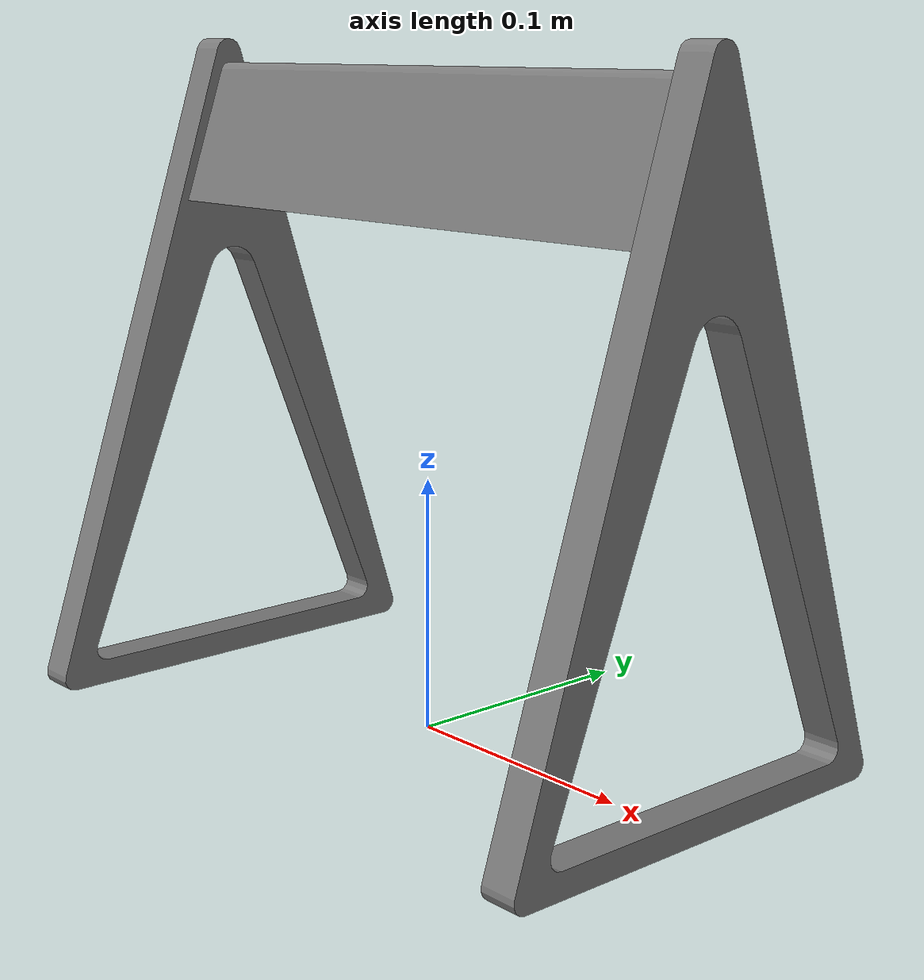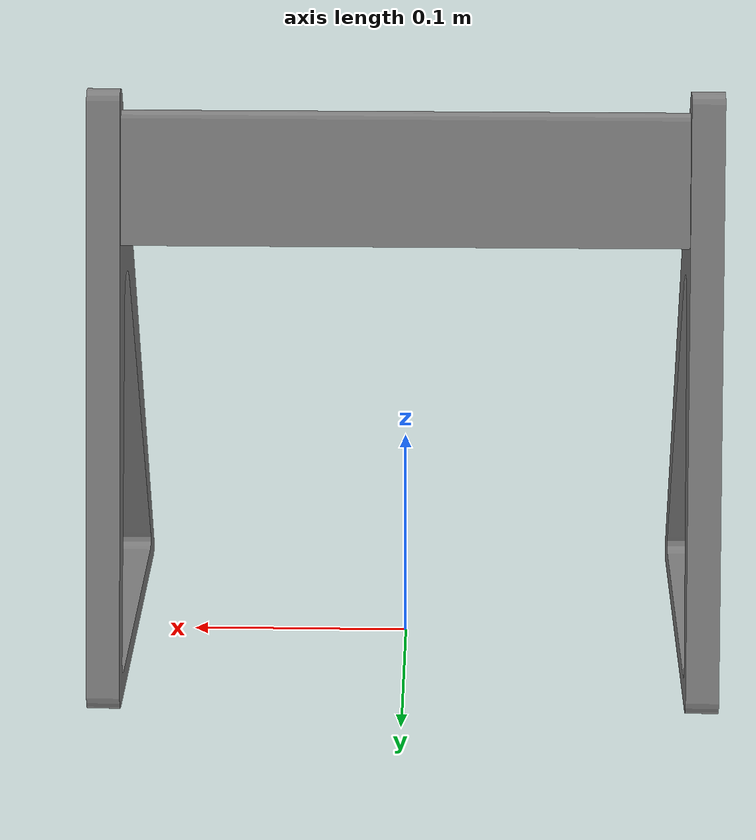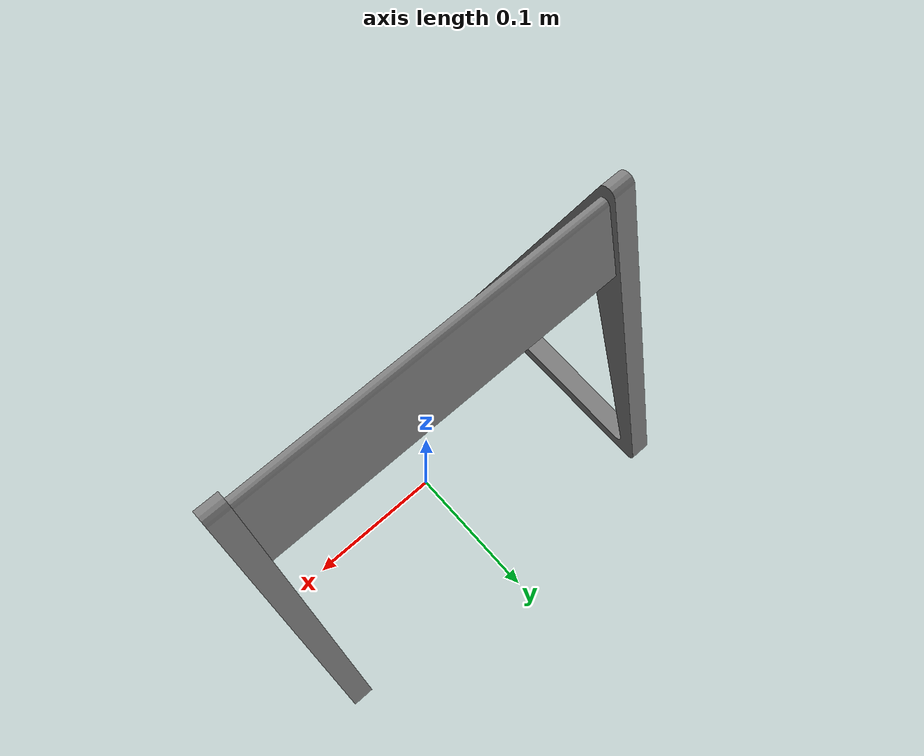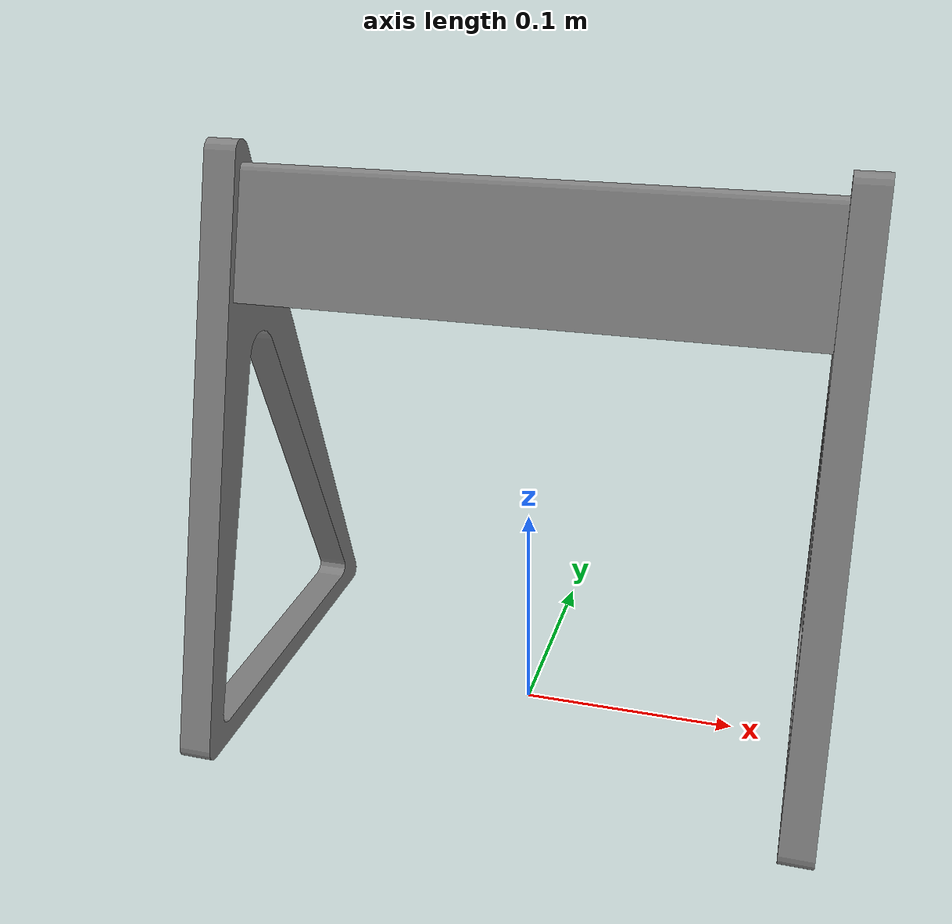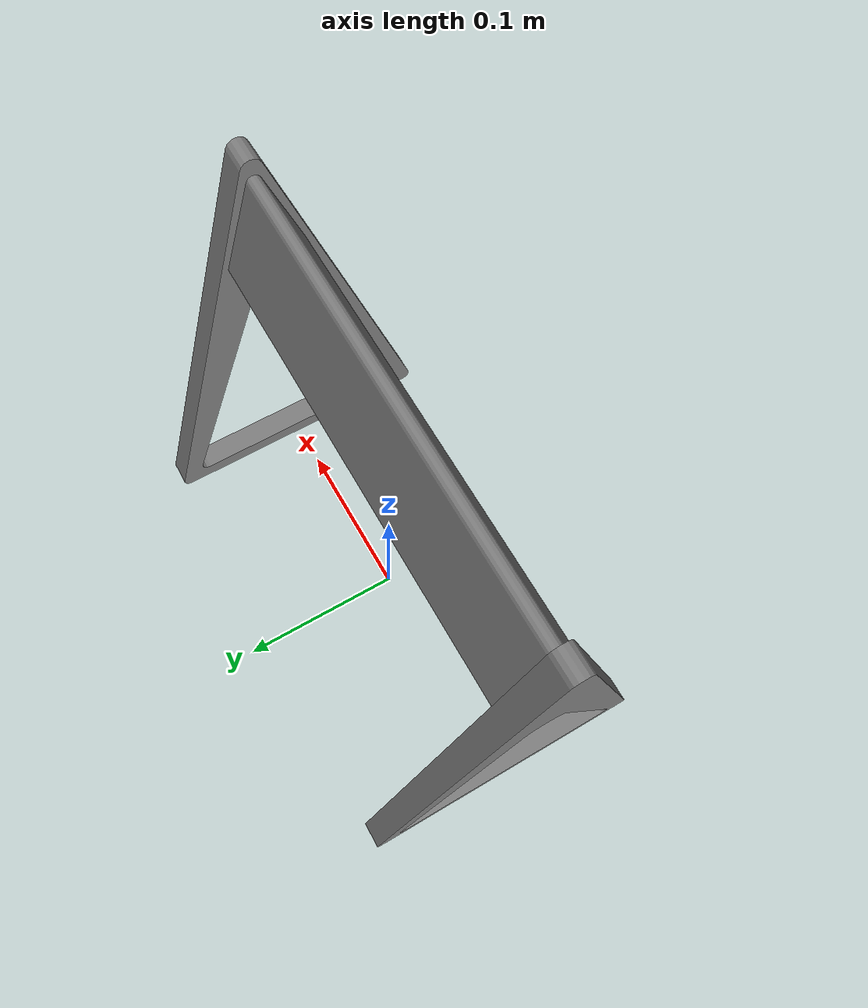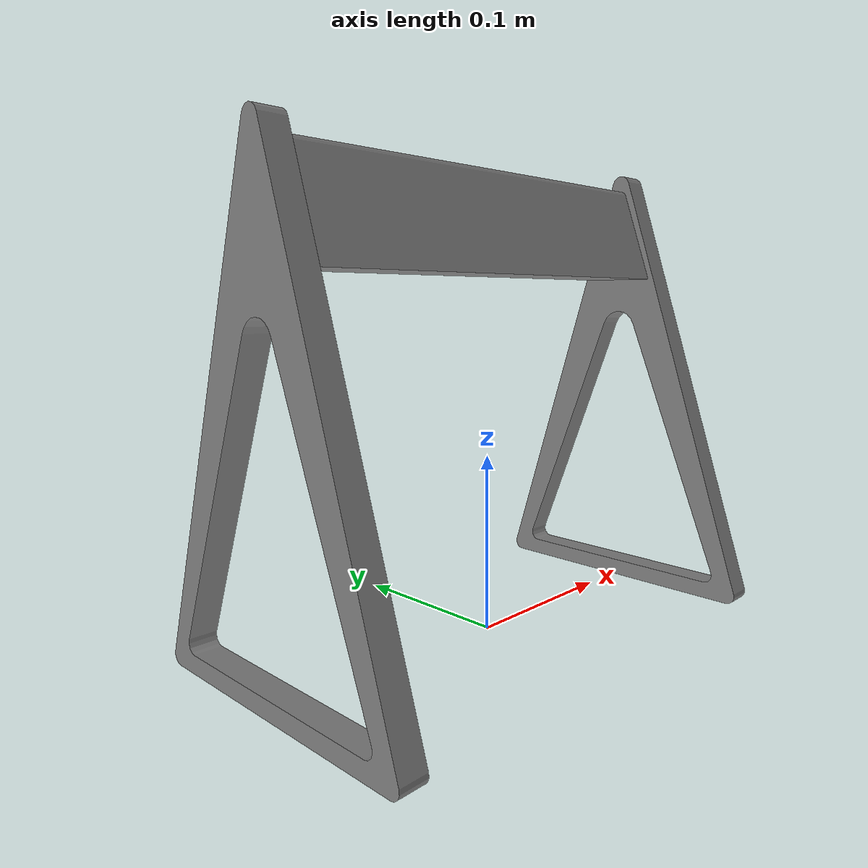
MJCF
<mujoco model="pipette_rack">
  <compiler angle="radian" meshdir="../../assets/"/>

  <asset>
    <mesh name="pipette_rack-visual_beam_visual" file="rack/pipette_rack_tri_vis/beam_visual.obj" scale="0.001 0.001 0.001"/>
    <mesh name="pipette_rack-visual_legs_visual" file="rack/pipette_rack_tri_vis/legs_visual.obj" scale="0.001 0.001 0.001"/>
    <mesh name="pipette_rack-collision_beam_collision_0" file="rack/pipette_rack_tri_col/beam_collision_0.obj" scale="0.001 0.001 0.001"/>
    <mesh name="pipette_rack-collision_leg2_collision_0" file="rack/pipette_rack_tri_col/leg2_collision_0.obj" scale="0.001 0.001 0.001"/>
    <mesh name="pipette_rack-collision_leg1_collision_0" file="rack/pipette_rack_tri_col/leg1_collision_0.obj" scale="0.001 0.001 0.001"/>
  </asset>

  <worldbody>
    <body name="pipette_rack">
      <geom type="mesh" contype="0" conaffinity="0" group="2" mesh="pipette_rack-visual_legs_visual"/>
      <geom type="mesh" contype="0" conaffinity="0" group="2" mesh="pipette_rack-visual_beam_visual"/>
      <geom type="mesh" group="3" mesh="pipette_rack-collision_leg1_collision_0"/>
      <geom type="mesh" group="3" mesh="pipette_rack-collision_leg2_collision_0"/>
      <geom type="mesh" group="3" mesh="pipette_rack-collision_beam_collision_0"/>
    </body>
  </worldbody>
</mujoco>
